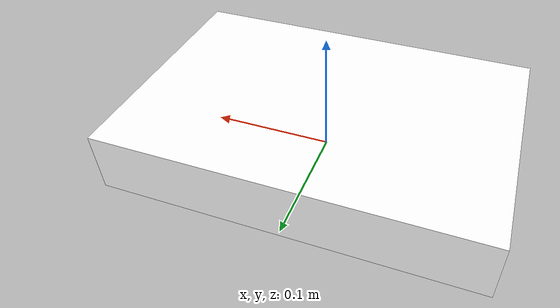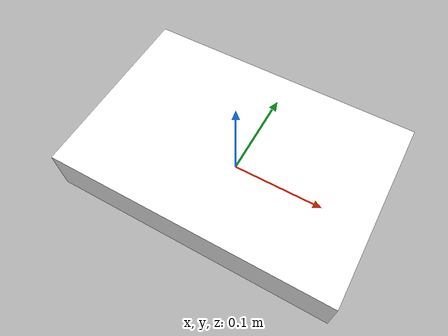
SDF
<?xml version='1.0'?>
<sdf version='1.7'>
  <model name='borad_xyz_0.3_0.2_0.05m'>
    <link name='link'>
      <inertial>
        <mass>1</mass>
        <inertia>
          <ixx>0.083</ixx>
          <ixy>0</ixy>
          <ixz>0</ixz>
          <iyy>0.083</iyy>
          <iyz>0</iyz>
          <izz>0.083</izz>
        </inertia>
        <pose>0 0 0 0 -0 0</pose>
      </inertial>
      <self_collide>0</self_collide>
      <enable_wind>0</enable_wind>
      <kinematic>0</kinematic>
      <pose>0 0 0.02 0 -0 0</pose>
      <gravity>1</gravity>
      <visual name='visual'>
        <geometry>
          <box>
            <size>0.3 0.2 0.05</size>
          </box>
        </geometry>
        <material>
          <ambient>0.627 0.322 0.176 1</ambient>
          <shader type='pixel'>
            <normal_map>__default__</normal_map>
          </shader>
          <script>
            <name>ModelPreview_1::link::visual_MATERIAL_</name>
            <uri>__default__</uri>
          </script>
          <diffuse>1 1 1 1</diffuse>
          <specular>0 0 0 1</specular>
          <emissive>0 0 0 1</emissive>
        </material>
        <pose>0 0 0 0 -0 0</pose>
        <transparency>0</transparency>
        <cast_shadows>1</cast_shadows>
      </visual>
      <collision name='collision'>
        <laser_retro>0</laser_retro>
        <max_contacts>10</max_contacts>
        <pose>0 0 0 0 -0 0</pose>
        <geometry>
          <box>
            <size>0.3 0.2 0.05</size>
          </box>
        </geometry>
        <surface>
          <friction>
            <ode>
              <mu>1</mu>
              <mu2>1</mu2>
              <fdir1>0 0 0</fdir1>
              <slip1>0</slip1>
              <slip2>0</slip2>
            </ode>
            <torsional>
              <coefficient>1</coefficient>
              <patch_radius>0</patch_radius>
              <surface_radius>0</surface_radius>
              <use_patch_radius>1</use_patch_radius>
              <ode>
                <slip>0</slip>
              </ode>
            </torsional>
          </friction>
          <bounce>
            <restitution_coefficient>0</restitution_coefficient>
            <threshold>1e+06</threshold>
          </bounce>
          <contact>
            <collide_without_contact>0</collide_without_contact>
            <collide_without_contact_bitmask>1</collide_without_contact_bitmask>
            <collide_bitmask>1</collide_bitmask>
            <ode>
              <soft_cfm>0</soft_cfm>
              <soft_erp>0.2</soft_erp>
              <kp>1e+13</kp>
              <kd>1</kd>
              <max_vel>0.01</max_vel>
              <min_depth>0</min_depth>
            </ode>
            <bullet>
              <split_impulse>1</split_impulse>
              <split_impulse_penetration_threshold>-0.01</split_impulse_penetration_threshold>
              <soft_cfm>0</soft_cfm>
              <soft_erp>0.2</soft_erp>
              <kp>1e+13</kp>
              <kd>1</kd>
            </bullet>
          </contact>
        </surface>
      </collision>
    </link>
    <static>1</static>
    <allow_auto_disable>1</allow_auto_disable>
  </model>
</sdf>
